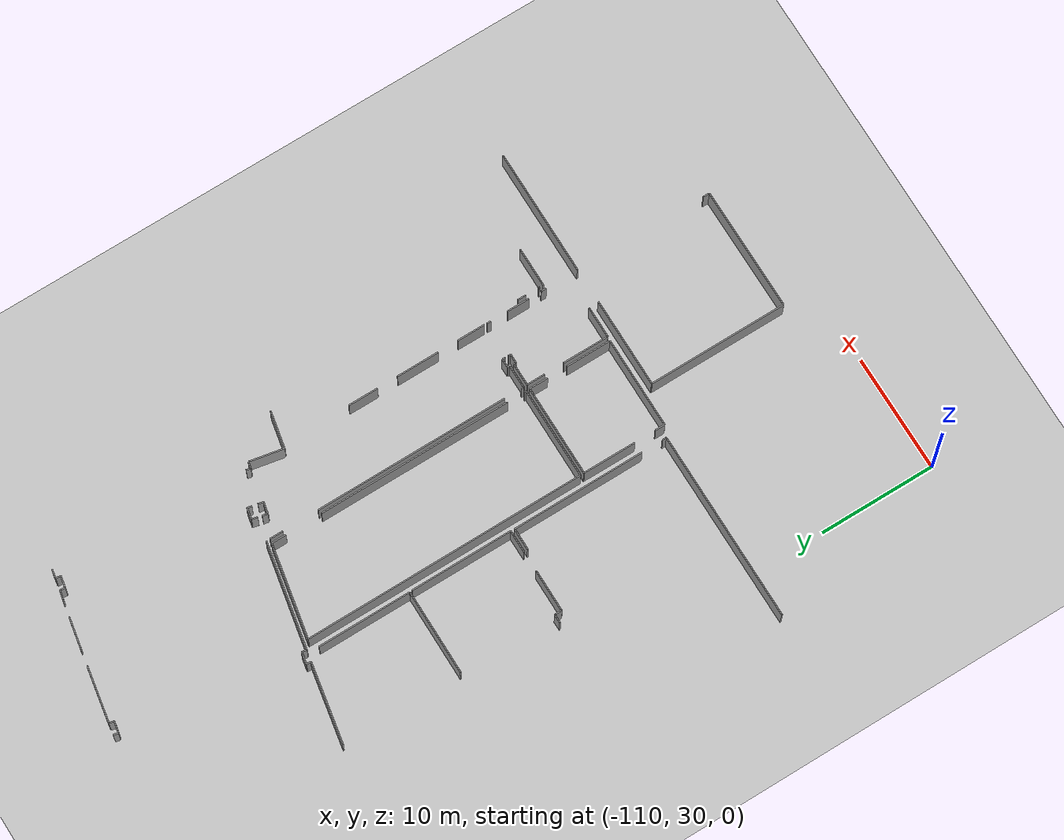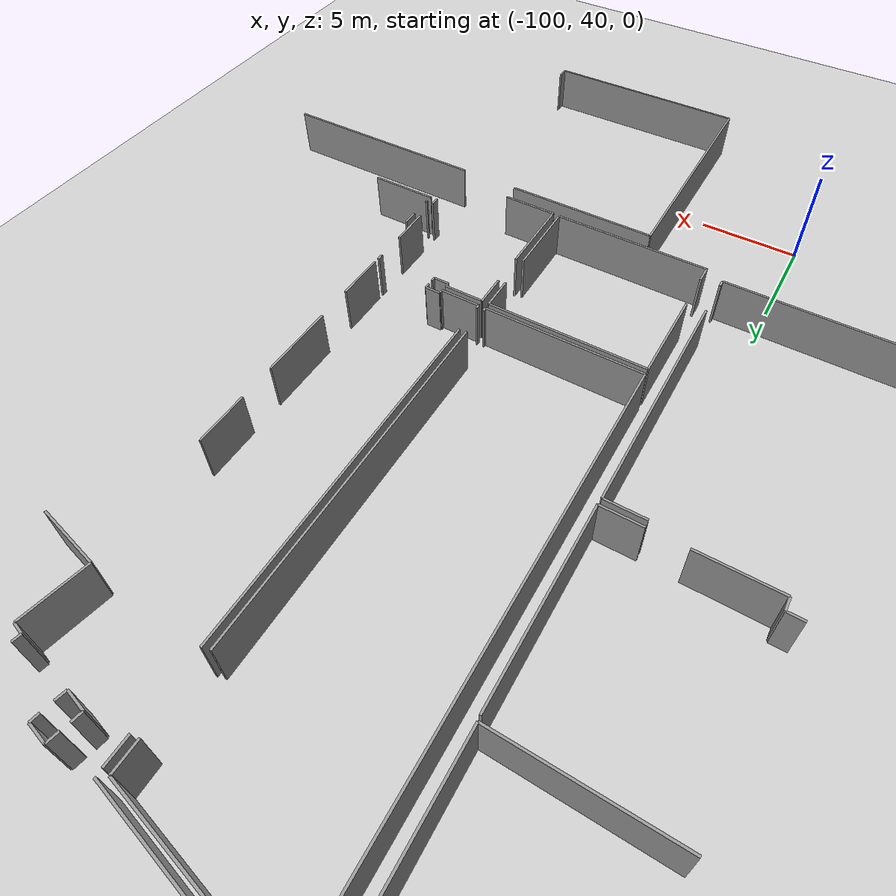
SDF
<sdf version="1.6">
 <world name="default">
  <model name="ground_plane">
   <static>1</static>
   <link name="link">
    <collision name="collision">
     <geometry><plane><normal>0 0 1</normal><size>100 100</size></plane></geometry>
     <surface><friction><ode><mu>100</mu><mu2>50</mu2></ode></friction></surface>
    </collision>
    <visual name="visual">
     <cast_shadows>0</cast_shadows>
     <geometry><plane><normal>0 0 1</normal><size>100 100</size></plane></geometry>
     <material>
      <script><uri>file://media/materials/scripts/gazebo.material</uri><name>Gazebo/Grey</name></script>
     </material>
    </visual>
   </link>
  </model>
  <model name="0510045925_40">
   <static>1</static>
   <link name="Wall_367">
    <collision name="Wall_367_Collision">
     <geometry><box><size>0.418338643665 0.1 2.5</size></box></geometry>
     <pose>0.209169321833 0 1.25 0 0 0</pose>
    </collision>
    <visual name="Wall_367_Visual">
     <pose>0.209169321833 0 1.25 0 0 0</pose>
     <geometry><box><size>0.418338643665 0.1 2.5</size></box></geometry>
     <material>
      <script><uri>file://media/materials/scripts/gazebo.material</uri><name>Gazebo/Grey</name></script>
      <ambient>1 1 1 1</ambient>
     </material>
    </visual>
    <pose>38.5262302987 -6.83985178041 0 0 0 -1.78104220259</pose>
   </link>
   <link name="Wall_368">
    <collision name="Wall_368_Collision">
     <geometry><box><size>0.962103823468 0.1 2.5</size></box></geometry>
     <pose>0.481051911734 0 1.25 0 0 0</pose>
    </collision>
    <visual name="Wall_368_Visual">
     <pose>0.481051911734 0 1.25 0 0 0</pose>
     <geometry><box><size>0.962103823468 0.1 2.5</size></box></geometry>
     <material>
      <script><uri>file://media/materials/scripts/gazebo.material</uri><name>Gazebo/Grey</name></script>
      <ambient>1 1 1 1</ambient>
     </material>
    </visual>
    <pose>38.43892287 -7.24897845232 0 0 0 -0.222903662613</pose>
   </link>
   <link name="Wall_369">
    <collision name="Wall_369_Collision">
     <geometry><box><size>0.439146736867 0.1 2.5</size></box></geometry>
     <pose>0.219573368434 0 1.25 0 0 0</pose>
    </collision>
    <visual name="Wall_369_Visual">
     <pose>0.219573368434 0 1.25 0 0 0</pose>
     <geometry><box><size>0.439146736867 0.1 2.5</size></box></geometry>
     <material>
      <script><uri>file://media/materials/scripts/gazebo.material</uri><name>Gazebo/Grey</name></script>
      <ambient>1 1 1 1</ambient>
     </material>
    </visual>
    <pose>39.3772239283 -7.46166340956 0 0 0 1.31965009399</pose>
   </link>
   <link name="Wall_370">
    <collision name="Wall_370_Collision">
     <geometry><box><size>4.72189360675 0.1 2.5</size></box></geometry>
     <pose>2.36094680338 0 1.25 0 0 0</pose>
    </collision>
    <visual name="Wall_370_Visual">
     <pose>2.36094680338 0 1.25 0 0 0</pose>
     <geometry><box><size>4.72189360675 0.1 2.5</size></box></geometry>
     <material>
      <script><uri>file://media/materials/scripts/gazebo.material</uri><name>Gazebo/Grey</name></script>
      <ambient>1 1 1 1</ambient>
     </material>
    </visual>
    <pose>39.4863582143 -7.03629349509 0 0 0 -0.184492778064</pose>
   </link>
   <link name="Wall_371">
    <collision name="Wall_371_Collision">
     <geometry><box><size>2.55303206979 0.1 2.5</size></box></geometry>
     <pose>1.2765160349 0 1.25 0 0 0</pose>
    </collision>
    <visual name="Wall_371_Visual">
     <pose>1.2765160349 0 1.25 0 0 0</pose>
     <geometry><box><size>2.55303206979 0.1 2.5</size></box></geometry>
     <material>
      <script><uri>file://media/materials/scripts/gazebo.material</uri><name>Gazebo/Grey</name></script>
      <ambient>1 1 1 1</ambient>
     </material>
    </visual>
    <pose>45.6027004391 -8.18372630136 0 0 0 -0.195796871358</pose>
   </link>
   <link name="Wall_372">
    <collision name="Wall_372_Collision">
     <geometry><box><size>0.758009795037 0.1 2.5</size></box></geometry>
     <pose>0.379004897519 0 1.25 0 0 0</pose>
    </collision>
    <visual name="Wall_372_Visual">
     <pose>0.379004897519 0 1.25 0 0 0</pose>
     <geometry><box><size>0.758009795037 0.1 2.5</size></box></geometry>
     <material>
      <script><uri>file://media/materials/scripts/gazebo.material</uri><name>Gazebo/Grey</name></script>
      <ambient>1 1 1 1</ambient>
     </material>
    </visual>
    <pose>49.52290551 -8.96593995076 0 0 0 -0.213221387632</pose>
   </link>
   <link name="Wall_373">
    <collision name="Wall_373_Collision">
     <geometry><box><size>0.433786025775 0.1 2.5</size></box></geometry>
     <pose>0.216893012888 0 1.25 0 0 0</pose>
    </collision>
    <visual name="Wall_373_Visual">
     <pose>0.216893012888 0 1.25 0 0 0</pose>
     <geometry><box><size>0.433786025775 0.1 2.5</size></box></geometry>
     <material>
      <script><uri>file://media/materials/scripts/gazebo.material</uri><name>Gazebo/Grey</name></script>
      <ambient>1 1 1 1</ambient>
     </material>
    </visual>
    <pose>50.263749651 -9.12634197102 0 0 0 -1.6851364156</pose>
   </link>
   <link name="Wall_374">
    <collision name="Wall_374_Collision">
     <geometry><box><size>0.991232753072 0.1 2.5</size></box></geometry>
     <pose>0.495616376536 0 1.25 0 0 0</pose>
    </collision>
    <visual name="Wall_374_Visual">
     <pose>0.495616376536 0 1.25 0 0 0</pose>
     <geometry><box><size>0.991232753072 0.1 2.5</size></box></geometry>
     <material>
      <script><uri>file://media/materials/scripts/gazebo.material</uri><name>Gazebo/Grey</name></script>
      <ambient>1 1 1 1</ambient>
     </material>
    </visual>
    <pose>50.2142585214 -9.55729550011 0 0 0 -0.209698459398</pose>
   </link>
   <link name="Wall_375">
    <collision name="Wall_375_Collision">
     <geometry><box><size>0.439227184396 0.1 2.5</size></box></geometry>
     <pose>0.219613592198 0 1.25 0 0 0</pose>
    </collision>
    <visual name="Wall_375_Visual">
     <pose>0.219613592198 0 1.25 0 0 0</pose>
     <geometry><box><size>0.439227184396 0.1 2.5</size></box></geometry>
     <material>
      <script><uri>file://media/materials/scripts/gazebo.material</uri><name>Gazebo/Grey</name></script>
      <ambient>1 1 1 1</ambient>
     </material>
    </visual>
    <pose>51.1837770615 -9.76363544072 0 0 0 1.47704986818</pose>
   </link>
   <link name="Wall_376">
    <collision name="Wall_376_Collision">
     <geometry><box><size>0.774790954227 0.1 2.5</size></box></geometry>
     <pose>0.387395477113 0 1.25 0 0 0</pose>
    </collision>
    <visual name="Wall_376_Visual">
     <pose>0.387395477113 0 1.25 0 0 0</pose>
     <geometry><box><size>0.774790954227 0.1 2.5</size></box></geometry>
     <material>
      <script><uri>file://media/materials/scripts/gazebo.material</uri><name>Gazebo/Grey</name></script>
      <ambient>1 1 1 1</ambient>
     </material>
    </visual>
    <pose>51.2248927692 -9.326336895 0 0 0 -0.169510758639</pose>
   </link>
   <link name="Wall_496">
    <collision name="Wall_496_Collision">
     <geometry><box><size>0.381421194703 0.1 2.5</size></box></geometry>
     <pose>0.190710597351 0 1.25 0 0 0</pose>
    </collision>
    <visual name="Wall_496_Visual">
     <pose>0.190710597351 0 1.25 0 0 0</pose>
     <geometry><box><size>0.381421194703 0.1 2.5</size></box></geometry>
     <material>
      <script><uri>file://media/materials/scripts/gazebo.material</uri><name>Gazebo/Grey</name></script>
      <ambient>1 1 1 1</ambient>
     </material>
    </visual>
    <pose>48.2201466968 -24.8789878429 0 0 0 1.39623976592</pose>
   </link>
   <link name="Wall_497">
    <collision name="Wall_497_Collision">
     <geometry><box><size>0.952383807945 0.1 2.5</size></box></geometry>
     <pose>0.476191903973 0 1.25 0 0 0</pose>
    </collision>
    <visual name="Wall_497_Visual">
     <pose>0.476191903973 0 1.25 0 0 0</pose>
     <geometry><box><size>0.952383807945 0.1 2.5</size></box></geometry>
     <material>
      <script><uri>file://media/materials/scripts/gazebo.material</uri><name>Gazebo/Grey</name></script>
      <ambient>1 1 1 1</ambient>
     </material>
    </visual>
    <pose>48.2863886703 -24.5033628588 0 0 0 2.94336088614</pose>
   </link>
   <link name="Wall_498">
    <collision name="Wall_498_Collision">
     <geometry><box><size>0.509800697012 0.1 2.5</size></box></geometry>
     <pose>0.254900348506 0 1.25 0 0 0</pose>
    </collision>
    <visual name="Wall_498_Visual">
     <pose>0.254900348506 0 1.25 0 0 0</pose>
     <geometry><box><size>0.509800697012 0.1 2.5</size></box></geometry>
     <material>
      <script><uri>file://media/materials/scripts/gazebo.material</uri><name>Gazebo/Grey</name></script>
      <ambient>1 1 1 1</ambient>
     </material>
    </visual>
    <pose>47.352656024 -24.3158041674 0 0 0 -1.77483111735</pose>
   </link>
   <link name="Wall_499">
    <collision name="Wall_499_Collision">
     <geometry><box><size>9.03785184257 0.1 2.5</size></box></geometry>
     <pose>4.51892592128 0 1.25 0 0 0</pose>
    </collision>
    <visual name="Wall_499_Visual">
     <pose>4.51892592128 0 1.25 0 0 0</pose>
     <geometry><box><size>9.03785184257 0.1 2.5</size></box></geometry>
     <material>
      <script><uri>file://media/materials/scripts/gazebo.material</uri><name>Gazebo/Grey</name></script>
      <ambient>1 1 1 1</ambient>
     </material>
    </visual>
    <pose>45.3072764651 -24.4112332174 0 0 0 2.94241271884</pose>
   </link>
   <link name="Wall_500">
    <collision name="Wall_500_Collision">
     <geometry><box><size>0.406377030415 0.1 2.5</size></box></geometry>
     <pose>0.203188515208 0 1.25 0 0 0</pose>
    </collision>
    <visual name="Wall_500_Visual">
     <pose>0.203188515208 0 1.25 0 0 0</pose>
     <geometry><box><size>0.406377030415 0.1 2.5</size></box></geometry>
     <material>
      <script><uri>file://media/materials/scripts/gazebo.material</uri><name>Gazebo/Grey</name></script>
      <ambient>1 1 1 1</ambient>
     </material>
    </visual>
    <pose>36.448110454 -22.6229537321 0 0 0 1.41591528321</pose>
   </link>
   <link name="Wall_501">
    <collision name="Wall_501_Collision">
     <geometry><box><size>1.01903508116 0.1 2.5</size></box></geometry>
     <pose>0.509517540581 0 1.25 0 0 0</pose>
    </collision>
    <visual name="Wall_501_Visual">
     <pose>0.509517540581 0 1.25 0 0 0</pose>
     <geometry><box><size>1.01903508116 0.1 2.5</size></box></geometry>
     <material>
      <script><uri>file://media/materials/scripts/gazebo.material</uri><name>Gazebo/Grey</name></script>
      <ambient>1 1 1 1</ambient>
     </material>
    </visual>
    <pose>36.5107992183 -22.2214410802 0 0 0 2.9415106351</pose>
   </link>
   <link name="Wall_502">
    <collision name="Wall_502_Collision">
     <geometry><box><size>0.398989256344 0.1 2.5</size></box></geometry>
     <pose>0.199494628172 0 1.25 0 0 0</pose>
    </collision>
    <visual name="Wall_502_Visual">
     <pose>0.199494628172 0 1.25 0 0 0</pose>
     <geometry><box><size>0.398989256344 0.1 2.5</size></box></geometry>
     <material>
      <script><uri>file://media/materials/scripts/gazebo.material</uri><name>Gazebo/Grey</name></script>
      <ambient>1 1 1 1</ambient>
     </material>
    </visual>
    <pose>35.5120936017 -22.0189081495 0 0 0 -1.6331754574</pose>
   </link>
   <link name="Wall_503">
    <collision name="Wall_503_Collision">
     <geometry><box><size>6.80683243617 0.1 2.5</size></box></geometry>
     <pose>3.40341621808 0 1.25 0 0 0</pose>
    </collision>
    <visual name="Wall_503_Visual">
     <pose>3.40341621808 0 1.25 0 0 0</pose>
     <geometry><box><size>6.80683243617 0.1 2.5</size></box></geometry>
     <material>
      <script><uri>file://media/materials/scripts/gazebo.material</uri><name>Gazebo/Grey</name></script>
      <ambient>1 1 1 1</ambient>
     </material>
    </visual>
    <pose>35.4872211365 -22.4171213929 0 0 0 2.95478567318</pose>
   </link>
   <link name="Wall_642">
    <collision name="Wall_642_Collision">
     <geometry><box><size>8.05284421408 0.1 2.5</size></box></geometry>
     <pose>4.02642210704 0 1.25 0 0 0</pose>
    </collision>
    <visual name="Wall_642_Visual">
     <pose>4.02642210704 0 1.25 0 0 0</pose>
     <geometry><box><size>8.05284421408 0.1 2.5</size></box></geometry>
     <material>
      <script><uri>file://media/materials/scripts/gazebo.material</uri><name>Gazebo/Grey</name></script>
      <ambient>1 1 1 1</ambient>
     </material>
    </visual>
    <pose>36.1661379153 -23.5239460927 0 0 0 -1.57164728313</pose>
   </link>
   <link name="Wall_643">
    <collision name="Wall_643_Collision">
     <geometry><box><size>7.32595619401 0.1 2.5</size></box></geometry>
     <pose>3.662978097 0 1.25 0 0 0</pose>
    </collision>
    <visual name="Wall_643_Visual">
     <pose>3.662978097 0 1.25 0 0 0</pose>
     <geometry><box><size>7.32595619401 0.1 2.5</size></box></geometry>
     <material>
      <script><uri>file://media/materials/scripts/gazebo.material</uri><name>Gazebo/Grey</name></script>
      <ambient>1 1 1 1</ambient>
     </material>
    </visual>
    <pose>36.1592852973 -31.5767873912 0 0 0 3.14159265359</pose>
   </link>
   <link name="Wall_655">
    <collision name="Wall_655_Collision">
     <geometry><box><size>8.80739067536 0.1 2.5</size></box></geometry>
     <pose>4.40369533768 0 1.25 0 0 0</pose>
    </collision>
    <visual name="Wall_655_Visual">
     <pose>4.40369533768 0 1.25 0 0 0</pose>
     <geometry><box><size>8.80739067536 0.1 2.5</size></box></geometry>
     <material>
      <script><uri>file://media/materials/scripts/gazebo.material</uri><name>Gazebo/Grey</name></script>
      <ambient>1 1 1 1</ambient>
     </material>
    </visual>
    <pose>36.1854267658 -31.7823659298 0 0 0 -1.57079632679</pose>
   </link>
   <link name="Wall_656">
    <collision name="Wall_656_Collision">
     <geometry><box><size>1.93294586432 0.1 2.5</size></box></geometry>
     <pose>0.966472932159 0 1.25 0 0 0</pose>
    </collision>
    <visual name="Wall_656_Visual">
     <pose>0.966472932159 0 1.25 0 0 0</pose>
     <geometry><box><size>1.93294586432 0.1 2.5</size></box></geometry>
     <material>
      <script><uri>file://media/materials/scripts/gazebo.material</uri><name>Gazebo/Grey</name></script>
      <ambient>1 1 1 1</ambient>
     </material>
    </visual>
    <pose>36.1854267658 -40.5897566052 0 0 0 3.14159265359</pose>
   </link>
   <link name="Wall_657">
    <collision name="Wall_657_Collision">
     <geometry><box><size>3.6387401335 0.1 2.5</size></box></geometry>
     <pose>1.81937006675 0 1.25 0 0 0</pose>
    </collision>
    <visual name="Wall_657_Visual">
     <pose>1.81937006675 0 1.25 0 0 0</pose>
     <geometry><box><size>3.6387401335 0.1 2.5</size></box></geometry>
     <material>
      <script><uri>file://media/materials/scripts/gazebo.material</uri><name>Gazebo/Grey</name></script>
      <ambient>1 1 1 1</ambient>
     </material>
    </visual>
    <pose>32.5207989645 -40.5897566052 0 0 0 3.14159265359</pose>
   </link>
   <link name="Wall_658">
    <collision name="Wall_658_Collision">
     <geometry><box><size>0.607852592574 0.1 2.5</size></box></geometry>
     <pose>0.303926296287 0 1.25 0 0 0</pose>
    </collision>
    <visual name="Wall_658_Visual">
     <pose>0.303926296287 0 1.25 0 0 0</pose>
     <geometry><box><size>0.607852592574 0.1 2.5</size></box></geometry>
     <material>
      <script><uri>file://media/materials/scripts/gazebo.material</uri><name>Gazebo/Grey</name></script>
      <ambient>1 1 1 1</ambient>
     </material>
    </visual>
    <pose>28.882058831 -40.5897566052 0 0 0 1.57079632679</pose>
   </link>
   <link name="Wall_659">
    <collision name="Wall_659_Collision">
     <geometry><box><size>0.746427755641 0.1 2.5</size></box></geometry>
     <pose>0.37321387782 0 1.25 0 0 0</pose>
    </collision>
    <visual name="Wall_659_Visual">
     <pose>0.37321387782 0 1.25 0 0 0</pose>
     <geometry><box><size>0.746427755641 0.1 2.5</size></box></geometry>
     <material>
      <script><uri>file://media/materials/scripts/gazebo.material</uri><name>Gazebo/Grey</name></script>
      <ambient>1 1 1 1</ambient>
     </material>
    </visual>
    <pose>28.882058831 -39.9819040126 0 0 0 3.14159265359</pose>
   </link>
   <link name="Wall_678">
    <collision name="Wall_678_Collision">
     <geometry><box><size>1.88802314662 0.1 2.5</size></box></geometry>
     <pose>0.94401157331 0 1.25 0 0 0</pose>
    </collision>
    <visual name="Wall_678_Visual">
     <pose>0.94401157331 0 1.25 0 0 0</pose>
     <geometry><box><size>1.88802314662 0.1 2.5</size></box></geometry>
     <material>
      <script><uri>file://media/materials/scripts/gazebo.material</uri><name>Gazebo/Grey</name></script>
      <ambient>1 1 1 1</ambient>
     </material>
    </visual>
    <pose>34.2712621507 -40.9255348849 0 0 0 0.0</pose>
   </link>
   <link name="Wall_679">
    <collision name="Wall_679_Collision">
     <geometry><box><size>11.4215375244 0.1 2.5</size></box></geometry>
     <pose>5.71076876221 0 1.25 0 0 0</pose>
    </collision>
    <visual name="Wall_679_Visual">
     <pose>5.71076876221 0 1.25 0 0 0</pose>
     <geometry><box><size>11.4215375244 0.1 2.5</size></box></geometry>
     <material>
      <script><uri>file://media/materials/scripts/gazebo.material</uri><name>Gazebo/Grey</name></script>
      <ambient>1 1 1 1</ambient>
     </material>
    </visual>
    <pose>36.1592852973 -40.9255348849 0 0 0 -1.57079632679</pose>
   </link>
   <link name="Wall_680">
    <collision name="Wall_680_Collision">
     <geometry><box><size>0.355828532271 0.1 2.5</size></box></geometry>
     <pose>0.177914266135 0 1.25 0 0 0</pose>
    </collision>
    <visual name="Wall_680_Visual">
     <pose>0.177914266135 0 1.25 0 0 0</pose>
     <geometry><box><size>0.355828532271 0.1 2.5</size></box></geometry>
     <material>
      <script><uri>file://media/materials/scripts/gazebo.material</uri><name>Gazebo/Grey</name></script>
      <ambient>1 1 1 1</ambient>
     </material>
    </visual>
    <pose>36.1592852973 -54.2059084795 0 0 0 -1.57079632679</pose>
   </link>
   <link name="Wall_681">
    <collision name="Wall_681_Collision">
     <geometry><box><size>16.3597506249 0.1 2.5</size></box></geometry>
     <pose>8.17987531243 0 1.25 0 0 0</pose>
    </collision>
    <visual name="Wall_681_Visual">
     <pose>8.17987531243 0 1.25 0 0 0</pose>
     <geometry><box><size>16.3597506249 0.1 2.5</size></box></geometry>
     <material>
      <script><uri>file://media/materials/scripts/gazebo.material</uri><name>Gazebo/Grey</name></script>
      <ambient>1 1 1 1</ambient>
     </material>
    </visual>
    <pose>36.1592852973 -54.5617370118 0 0 0 -3.1403050141</pose>
   </link>
   <link name="Wall_682">
    <collision name="Wall_682_Collision">
     <geometry><box><size>7.84421715185 0.1 2.5</size></box></geometry>
     <pose>3.92210857592 0 1.25 0 0 0</pose>
    </collision>
    <visual name="Wall_682_Visual">
     <pose>3.92210857592 0 1.25 0 0 0</pose>
     <geometry><box><size>7.84421715185 0.1 2.5</size></box></geometry>
     <material>
      <script><uri>file://media/materials/scripts/gazebo.material</uri><name>Gazebo/Grey</name></script>
      <ambient>1 1 1 1</ambient>
     </material>
    </visual>
    <pose>37.1077383823 -47.738559935 0 0 0 0.0</pose>
   </link>
   <link name="Wall_683">
    <collision name="Wall_683_Collision">
     <geometry><box><size>1.61391842847 0.1 2.5</size></box></geometry>
     <pose>0.806959214233 0 1.25 0 0 0</pose>
    </collision>
    <visual name="Wall_683_Visual">
     <pose>0.806959214233 0 1.25 0 0 0</pose>
     <geometry><box><size>1.61391842847 0.1 2.5</size></box></geometry>
     <material>
      <script><uri>file://media/materials/scripts/gazebo.material</uri><name>Gazebo/Grey</name></script>
      <ambient>1 1 1 1</ambient>
     </material>
    </visual>
    <pose>44.9519555341 -47.738559935 0 0 0 -1.57079632679</pose>
   </link>
   <link name="Wall_684">
    <collision name="Wall_684_Collision">
     <geometry><box><size>3.89533260577 0.1 2.5</size></box></geometry>
     <pose>1.94766630289 0 1.25 0 0 0</pose>
    </collision>
    <visual name="Wall_684_Visual">
     <pose>1.94766630289 0 1.25 0 0 0</pose>
     <geometry><box><size>3.89533260577 0.1 2.5</size></box></geometry>
     <material>
      <script><uri>file://media/materials/scripts/gazebo.material</uri><name>Gazebo/Grey</name></script>
      <ambient>1 1 1 1</ambient>
     </material>
    </visual>
    <pose>44.9519555341 -51.0986269384 0 0 0 -1.57079632679</pose>
   </link>
   <link name="Wall_685">
    <collision name="Wall_685_Collision">
     <geometry><box><size>7.85995279308 0.1 2.5</size></box></geometry>
     <pose>3.92997639654 0 1.25 0 0 0</pose>
    </collision>
    <visual name="Wall_685_Visual">
     <pose>3.92997639654 0 1.25 0 0 0</pose>
     <geometry><box><size>7.85995279308 0.1 2.5</size></box></geometry>
     <material>
      <script><uri>file://media/materials/scripts/gazebo.material</uri><name>Gazebo/Grey</name></script>
      <ambient>1 1 1 1</ambient>
     </material>
    </visual>
    <pose>44.9519555341 -54.9939595442 0 0 0 3.14159265359</pose>
   </link>
   <link name="Wall_686">
    <collision name="Wall_686_Collision">
     <geometry><box><size>0.840334001675 0.1 2.5</size></box></geometry>
     <pose>0.420167000838 0 1.25 0 0 0</pose>
    </collision>
    <visual name="Wall_686_Visual">
     <pose>0.420167000838 0 1.25 0 0 0</pose>
     <geometry><box><size>0.840334001675 0.1 2.5</size></box></geometry>
     <material>
      <script><uri>file://media/materials/scripts/gazebo.material</uri><name>Gazebo/Grey</name></script>
      <ambient>1 1 1 1</ambient>
     </material>
    </visual>
    <pose>37.092002741 -54.9939595442 0 0 0 1.57079632679</pose>
   </link>
   <link name="Wall_687">
    <collision name="Wall_687_Collision">
     <geometry><box><size>4.54585094491 0.1 2.5</size></box></geometry>
     <pose>2.27292547245 0 1.25 0 0 0</pose>
    </collision>
    <visual name="Wall_687_Visual">
     <pose>2.27292547245 0 1.25 0 0 0</pose>
     <geometry><box><size>4.54585094491 0.1 2.5</size></box></geometry>
     <material>
      <script><uri>file://media/materials/scripts/gazebo.material</uri><name>Gazebo/Grey</name></script>
      <ambient>1 1 1 1</ambient>
     </material>
    </visual>
    <pose>37.092002741 -52.2843836451 0 0 0 1.56733478069</pose>
   </link>
   <link name="Wall_691">
    <collision name="Wall_691_Collision">
     <geometry><box><size>0.0890840334002 0.1 2.5</size></box></geometry>
     <pose>0.0445420167001 0 1.25 0 0 0</pose>
    </collision>
    <visual name="Wall_691_Visual">
     <pose>0.0445420167001 0 1.25 0 0 0</pose>
     <geometry><box><size>0.0890840334002 0.1 2.5</size></box></geometry>
     <material>
      <script><uri>file://media/materials/scripts/gazebo.material</uri><name>Gazebo/Grey</name></script>
      <ambient>1 1 1 1</ambient>
     </material>
    </visual>
    <pose>51.4413847364 -52.6739676658 0 0 0 1.57079632679</pose>
   </link>
   <link name="Wall_692">
    <collision name="Wall_692_Collision">
     <geometry><box><size>0.739609278924 0.1 2.5</size></box></geometry>
     <pose>0.369804639462 0 1.25 0 0 0</pose>
    </collision>
    <visual name="Wall_692_Visual">
     <pose>0.369804639462 0 1.25 0 0 0</pose>
     <geometry><box><size>0.739609278924 0.1 2.5</size></box></geometry>
     <material>
      <script><uri>file://media/materials/scripts/gazebo.material</uri><name>Gazebo/Grey</name></script>
      <ambient>1 1 1 1</ambient>
     </material>
    </visual>
    <pose>51.4413847364 -51.4448110454 0 0 0 1.56118783733</pose>
   </link>
   <link name="Wall_696">
    <collision name="Wall_696_Collision">
     <geometry><box><size>3.38443186721 0.1 2.5</size></box></geometry>
     <pose>1.69221593361 0 1.25 0 0 0</pose>
    </collision>
    <visual name="Wall_696_Visual">
     <pose>1.69221593361 0 1.25 0 0 0</pose>
     <geometry><box><size>3.38443186721 0.1 2.5</size></box></geometry>
     <material>
      <script><uri>file://media/materials/scripts/gazebo.material</uri><name>Gazebo/Grey</name></script>
      <ambient>1 1 1 1</ambient>
     </material>
    </visual>
    <pose>51.40839065 -53.0117763509 0 0 0 0.0</pose>
   </link>
   <link name="Wall_731">
    <collision name="Wall_731_Collision">
     <geometry><box><size>3.97071140326 0.1 2.5</size></box></geometry>
     <pose>1.98535570163 0 1.25 0 0 0</pose>
    </collision>
    <visual name="Wall_731_Visual">
     <pose>1.98535570163 0 1.25 0 0 0</pose>
     <geometry><box><size>3.97071140326 0.1 2.5</size></box></geometry>
     <material>
      <script><uri>file://media/materials/scripts/gazebo.material</uri><name>Gazebo/Grey</name></script>
      <ambient>1 1 1 1</ambient>
     </material>
    </visual>
    <pose>45.3146366843 -54.9947209462 0 0 0 1.57079632679</pose>
   </link>
   <link name="Wall_732">
    <collision name="Wall_732_Collision">
     <geometry><box><size>1.56265069414 0.1 2.5</size></box></geometry>
     <pose>0.781325347072 0 1.25 0 0 0</pose>
    </collision>
    <visual name="Wall_732_Visual">
     <pose>0.781325347072 0 1.25 0 0 0</pose>
     <geometry><box><size>1.56265069414 0.1 2.5</size></box></geometry>
     <material>
      <script><uri>file://media/materials/scripts/gazebo.material</uri><name>Gazebo/Grey</name></script>
      <ambient>1 1 1 1</ambient>
     </material>
    </visual>
    <pose>45.3146366843 -49.3062866425 0 0 0 1.57079632679</pose>
   </link>
   <link name="Wall_733">
    <collision name="Wall_733_Collision">
     <geometry><box><size>1.94741250222 0.1 2.5</size></box></geometry>
     <pose>0.97370625111 0 1.25 0 0 0</pose>
    </collision>
    <visual name="Wall_733_Visual">
     <pose>0.97370625111 0 1.25 0 0 0</pose>
     <geometry><box><size>1.94741250222 0.1 2.5</size></box></geometry>
     <material>
      <script><uri>file://media/materials/scripts/gazebo.material</uri><name>Gazebo/Grey</name></script>
      <ambient>1 1 1 1</ambient>
     </material>
    </visual>
    <pose>45.3146366843 -47.7436359483 0 0 0 0.0</pose>
   </link>
   <link name="Wall_734">
    <collision name="Wall_734_Collision">
     <geometry><box><size>0.199741123322 0.1 2.5</size></box></geometry>
     <pose>0.0998705616609 0 1.25 0 0 0</pose>
    </collision>
    <visual name="Wall_734_Visual">
     <pose>0.0998705616609 0 1.25 0 0 0</pose>
     <geometry><box><size>0.199741123322 0.1 2.5</size></box></geometry>
     <material>
      <script><uri>file://media/materials/scripts/gazebo.material</uri><name>Gazebo/Grey</name></script>
      <ambient>1 1 1 1</ambient>
     </material>
    </visual>
    <pose>47.2620491866 -47.7436359483 0 0 0 -1.57079632679</pose>
   </link>
   <link name="Wall_735">
    <collision name="Wall_735_Collision">
     <geometry><box><size>0.776122433441 0.1 2.5</size></box></geometry>
     <pose>0.38806121672 0 1.25 0 0 0</pose>
    </collision>
    <visual name="Wall_735_Visual">
     <pose>0.38806121672 0 1.25 0 0 0</pose>
     <geometry><box><size>0.776122433441 0.1 2.5</size></box></geometry>
     <material>
      <script><uri>file://media/materials/scripts/gazebo.material</uri><name>Gazebo/Grey</name></script>
      <ambient>1 1 1 1</ambient>
     </material>
    </visual>
    <pose>47.2620491866 -47.9433770716 0 0 0 0.0</pose>
   </link>
   <link name="Wall_736">
    <collision name="Wall_736_Collision">
     <geometry><box><size>0.221567980508 0.1 2.5</size></box></geometry>
     <pose>0.110783990254 0 1.25 0 0 0</pose>
    </collision>
    <visual name="Wall_736_Visual">
     <pose>0.110783990254 0 1.25 0 0 0</pose>
     <geometry><box><size>0.221567980508 0.1 2.5</size></box></geometry>
     <material>
      <script><uri>file://media/materials/scripts/gazebo.material</uri><name>Gazebo/Grey</name></script>
      <ambient>1 1 1 1</ambient>
     </material>
    </visual>
    <pose>48.03817162 -47.9433770716 0 0 0 1.57079632679</pose>
   </link>
   <link name="Wall_737">
    <collision name="Wall_737_Collision">
     <geometry><box><size>0.308367807924 0.1 2.5</size></box></geometry>
     <pose>0.154183903962 0 1.25 0 0 0</pose>
    </collision>
    <visual name="Wall_737_Visual">
     <pose>0.154183903962 0 1.25 0 0 0</pose>
     <geometry><box><size>0.308367807924 0.1 2.5</size></box></geometry>
     <material>
      <script><uri>file://media/materials/scripts/gazebo.material</uri><name>Gazebo/Grey</name></script>
      <ambient>1 1 1 1</ambient>
     </material>
    </visual>
    <pose>51.0850486028 -47.7218090911 0 0 0 -1.57079632679</pose>
   </link>
   <link name="Wall_738">
    <collision name="Wall_738_Collision">
     <geometry><box><size>1.95071191087 0.1 2.5</size></box></geometry>
     <pose>0.975355955433 0 1.25 0 0 0</pose>
    </collision>
    <visual name="Wall_738_Visual">
     <pose>0.975355955433 0 1.25 0 0 0</pose>
     <geometry><box><size>1.95071191087 0.1 2.5</size></box></geometry>
     <material>
      <script><uri>file://media/materials/scripts/gazebo.material</uri><name>Gazebo/Grey</name></script>
      <ambient>1 1 1 1</ambient>
     </material>
    </visual>
    <pose>51.0850486028 -49.5326768356 0 0 0 -1.57079632679</pose>
   </link>
   <link name="Wall_739">
    <collision name="Wall_739_Collision">
     <geometry><box><size>0.44897337631 0.1 2.5</size></box></geometry>
     <pose>0.224486688155 0 1.25 0 0 0</pose>
    </collision>
    <visual name="Wall_739_Visual">
     <pose>0.224486688155 0 1.25 0 0 0</pose>
     <geometry><box><size>0.44897337631 0.1 2.5</size></box></geometry>
     <material>
      <script><uri>file://media/materials/scripts/gazebo.material</uri><name>Gazebo/Grey</name></script>
      <ambient>1 1 1 1</ambient>
     </material>
    </visual>
    <pose>51.0850486028 -52.5968122636 0 0 0 -1.57079632679</pose>
   </link>
   <link name="Wall_740">
    <collision name="Wall_740_Collision">
     <geometry><box><size>2.70094667648 0.1 2.5</size></box></geometry>
     <pose>1.35047333824 0 1.25 0 0 0</pose>
    </collision>
    <visual name="Wall_740_Visual">
     <pose>1.35047333824 0 1.25 0 0 0</pose>
     <geometry><box><size>2.70094667648 0.1 2.5</size></box></geometry>
     <material>
      <script><uri>file://media/materials/scripts/gazebo.material</uri><name>Gazebo/Grey</name></script>
      <ambient>1 1 1 1</ambient>
     </material>
    </visual>
    <pose>48.0117763509 -55.0343138499 0 0 0 3.14159265359</pose>
   </link>
   <link name="Wall_741">
    <collision name="Wall_741_Collision">
     <geometry><box><size>0.0397755119513 0.1 2.5</size></box></geometry>
     <pose>0.0198877559756 0 1.25 0 0 0</pose>
    </collision>
    <visual name="Wall_741_Visual">
     <pose>0.0198877559756 0 1.25 0 0 0</pose>
     <geometry><box><size>0.0397755119513 0.1 2.5</size></box></geometry>
     <material>
      <script><uri>file://media/materials/scripts/gazebo.material</uri><name>Gazebo/Grey</name></script>
      <ambient>1 1 1 1</ambient>
     </material>
    </visual>
    <pose>45.3108296744 -55.0343138499 0 0 0 1.47493717969</pose>
   </link>
   <link name="Wall_747">
    <collision name="Wall_747_Collision">
     <geometry><box><size>24.2912616431 0.1 2.5</size></box></geometry>
     <pose>12.1456308216 0 1.25 0 0 0</pose>
    </collision>
    <visual name="Wall_747_Visual">
     <pose>12.1456308216 0 1.25 0 0 0</pose>
     <geometry><box><size>24.2912616431 0.1 2.5</size></box></geometry>
     <material>
      <script><uri>file://media/materials/scripts/gazebo.material</uri><name>Gazebo/Grey</name></script>
      <ambient>1 1 1 1</ambient>
     </material>
    </visual>
    <pose>37.101139565 -47.4205477018 0 0 0 1.57079632679</pose>
   </link>
   <link name="Wall_748">
    <collision name="Wall_748_Collision">
     <geometry><box><size>7.99162072185 0.1 2.5</size></box></geometry>
     <pose>3.99581036093 0 1.25 0 0 0</pose>
    </collision>
    <visual name="Wall_748_Visual">
     <pose>3.99581036093 0 1.25 0 0 0</pose>
     <geometry><box><size>7.99162072185 0.1 2.5</size></box></geometry>
     <material>
      <script><uri>file://media/materials/scripts/gazebo.material</uri><name>Gazebo/Grey</name></script>
      <ambient>1 1 1 1</ambient>
     </material>
    </visual>
    <pose>37.101139565 -23.1292860587 0 0 0 -0.194181738981</pose>
   </link>
   <link name="Wall_749">
    <collision name="Wall_749_Collision">
     <geometry><box><size>1.24539986295 0.1 2.5</size></box></geometry>
     <pose>0.622699931474 0 1.25 0 0 0</pose>
    </collision>
    <visual name="Wall_749_Visual">
     <pose>0.622699931474 0 1.25 0 0 0</pose>
     <geometry><box><size>1.24539986295 0.1 2.5</size></box></geometry>
     <material>
      <script><uri>file://media/materials/scripts/gazebo.material</uri><name>Gazebo/Grey</name></script>
      <ambient>1 1 1 1</ambient>
     </material>
    </visual>
    <pose>44.9425649095 -24.671378899 0 0 0 -1.57079632679</pose>
   </link>
   <link name="Wall_750">
    <collision name="Wall_750_Collision">
     <geometry><box><size>16.638156392 0.1 2.5</size></box></geometry>
     <pose>8.31907819598 0 1.25 0 0 0</pose>
    </collision>
    <visual name="Wall_750_Visual">
     <pose>8.31907819598 0 1.25 0 0 0</pose>
     <geometry><box><size>16.638156392 0.1 2.5</size></box></geometry>
     <material>
      <script><uri>file://media/materials/scripts/gazebo.material</uri><name>Gazebo/Grey</name></script>
      <ambient>1 1 1 1</ambient>
     </material>
    </visual>
    <pose>44.9425649095 -29.0849724626 0 0 0 -1.57079632679</pose>
   </link>
   <link name="Wall_751">
    <collision name="Wall_751_Collision">
     <geometry><box><size>0.182990279435 0.1 2.5</size></box></geometry>
     <pose>0.0914951397173 0 1.25 0 0 0</pose>
    </collision>
    <visual name="Wall_751_Visual">
     <pose>0.0914951397173 0 1.25 0 0 0</pose>
     <geometry><box><size>0.182990279435 0.1 2.5</size></box></geometry>
     <material>
      <script><uri>file://media/materials/scripts/gazebo.material</uri><name>Gazebo/Grey</name></script>
      <ambient>1 1 1 1</ambient>
     </material>
    </visual>
    <pose>44.9425649095 -47.2362884191 0 0 0 -1.57079632679</pose>
   </link>
   <link name="Wall_752">
    <collision name="Wall_752_Collision">
     <geometry><box><size>7.84142544722 0.1 2.5</size></box></geometry>
     <pose>3.92071272361 0 1.25 0 0 0</pose>
    </collision>
    <visual name="Wall_752_Visual">
     <pose>3.92071272361 0 1.25 0 0 0</pose>
     <geometry><box><size>7.84142544722 0.1 2.5</size></box></geometry>
     <material>
      <script><uri>file://media/materials/scripts/gazebo.material</uri><name>Gazebo/Grey</name></script>
      <ambient>1 1 1 1</ambient>
     </material>
    </visual>
    <pose>44.9425649095 -47.4192786985 0 0 0 -3.14143082034</pose>
   </link>
   <link name="Wall_753">
    <collision name="Wall_753_Collision">
     <geometry><box><size>0.212177355905 0.1 2.5</size></box></geometry>
     <pose>0.106088677952 0 1.25 0 0 0</pose>
    </collision>
    <visual name="Wall_753_Visual">
     <pose>0.106088677952 0 1.25 0 0 0</pose>
     <geometry><box><size>0.212177355905 0.1 2.5</size></box></geometry>
     <material>
      <script><uri>file://media/materials/scripts/gazebo.material</uri><name>Gazebo/Grey</name></script>
      <ambient>1 1 1 1</ambient>
     </material>
    </visual>
    <pose>45.2950940331 -47.4175020939 0 0 0 1.57079632679</pose>
   </link>
   <link name="Wall_754">
    <collision name="Wall_754_Collision">
     <geometry><box><size>16.683586711 0.1 2.5</size></box></geometry>
     <pose>8.3417933555 0 1.25 0 0 0</pose>
    </collision>
    <visual name="Wall_754_Visual">
     <pose>8.3417933555 0 1.25 0 0 0</pose>
     <geometry><box><size>16.683586711 0.1 2.5</size></box></geometry>
     <material>
      <script><uri>file://media/materials/scripts/gazebo.material</uri><name>Gazebo/Grey</name></script>
      <ambient>1 1 1 1</ambient>
     </material>
    </visual>
    <pose>45.2950940331 -45.6812517449 0 0 0 1.57079632679</pose>
   </link>
   <link name="Wall_755">
    <collision name="Wall_755_Collision">
     <geometry><box><size>1.13677317835 0.1 2.5</size></box></geometry>
     <pose>0.568386589173 0 1.25 0 0 0</pose>
    </collision>
    <visual name="Wall_755_Visual">
     <pose>0.568386589173 0 1.25 0 0 0</pose>
     <geometry><box><size>1.13677317835 0.1 2.5</size></box></geometry>
     <material>
      <script><uri>file://media/materials/scripts/gazebo.material</uri><name>Gazebo/Grey</name></script>
      <ambient>1 1 1 1</ambient>
     </material>
    </visual>
    <pose>45.2950940331 -25.8510443897 0 0 0 1.57079632679</pose>
   </link>
   <link name="Wall_756">
    <collision name="Wall_756_Collision">
     <geometry><box><size>0.457829386743 0.1 2.5</size></box></geometry>
     <pose>0.228914693371 0 1.25 0 0 0</pose>
    </collision>
    <visual name="Wall_756_Visual">
     <pose>0.228914693371 0 1.25 0 0 0</pose>
     <geometry><box><size>0.457829386743 0.1 2.5</size></box></geometry>
     <material>
      <script><uri>file://media/materials/scripts/gazebo.material</uri><name>Gazebo/Grey</name></script>
      <ambient>1 1 1 1</ambient>
     </material>
    </visual>
    <pose>47.1577371133 -25.1551229664 0 0 0 -1.74688149853</pose>
   </link>
   <link name="Wall_757">
    <collision name="Wall_757_Collision">
     <geometry><box><size>0.971429231421 0.1 2.5</size></box></geometry>
     <pose>0.485714615711 0 1.25 0 0 0</pose>
    </collision>
    <visual name="Wall_757_Visual">
     <pose>0.485714615711 0 1.25 0 0 0</pose>
     <geometry><box><size>0.971429231421 0.1 2.5</size></box></geometry>
     <material>
      <script><uri>file://media/materials/scripts/gazebo.material</uri><name>Gazebo/Grey</name></script>
      <ambient>1 1 1 1</ambient>
     </material>
    </visual>
    <pose>47.0775361031 -25.6058729474 0 0 0 -0.216713609441</pose>
   </link>
   <link name="Wall_758">
    <collision name="Wall_758_Collision">
     <geometry><box><size>0.470827117813 0.1 2.5</size></box></geometry>
     <pose>0.235413558906 0 1.25 0 0 0</pose>
    </collision>
    <visual name="Wall_758_Visual">
     <pose>0.235413558906 0 1.25 0 0 0</pose>
     <geometry><box><size>0.470827117813 0.1 2.5</size></box></geometry>
     <material>
      <script><uri>file://media/materials/scripts/gazebo.material</uri><name>Gazebo/Grey</name></script>
      <ambient>1 1 1 1</ambient>
     </material>
    </visual>
    <pose>48.0262429888 -25.8147508946 0 0 0 1.35733109937</pose>
   </link>
   <link name="Wall_759">
    <collision name="Wall_759_Collision">
     <geometry><box><size>0.38000435402 0.1 2.5</size></box></geometry>
     <pose>0.19000217701 0 1.25 0 0 0</pose>
    </collision>
    <visual name="Wall_759_Visual">
     <pose>0.19000217701 0 1.25 0 0 0</pose>
     <geometry><box><size>0.38000435402 0.1 2.5</size></box></geometry>
     <material>
      <script><uri>file://media/materials/scripts/gazebo.material</uri><name>Gazebo/Grey</name></script>
      <ambient>1 1 1 1</ambient>
     </material>
    </visual>
    <pose>50.8825156722 -25.966016091 0 0 0 -1.7882337462</pose>
   </link>
   <link name="Wall_760">
    <collision name="Wall_760_Collision">
     <geometry><box><size>0.562434470964 0.1 2.5</size></box></geometry>
     <pose>0.281217235482 0 1.25 0 0 0</pose>
    </collision>
    <visual name="Wall_760_Visual">
     <pose>0.281217235482 0 1.25 0 0 0</pose>
     <geometry><box><size>0.562434470964 0.1 2.5</size></box></geometry>
     <material>
      <script><uri>file://media/materials/scripts/gazebo.material</uri><name>Gazebo/Grey</name></script>
      <ambient>1 1 1 1</ambient>
     </material>
    </visual>
    <pose>50.8005380574 -26.3370726631 0 0 0 -0.244759772904</pose>
   </link>
   <link name="Wall_761">
    <collision name="Wall_761_Collision">
     <geometry><box><size>2.92824926779 0.1 2.5</size></box></geometry>
     <pose>1.4641246339 0 1.25 0 0 0</pose>
    </collision>
    <visual name="Wall_761_Visual">
     <pose>1.4641246339 0 1.25 0 0 0</pose>
     <geometry><box><size>2.92824926779 0.1 2.5</size></box></geometry>
     <material>
      <script><uri>file://media/materials/scripts/gazebo.material</uri><name>Gazebo/Grey</name></script>
      <ambient>1 1 1 1</ambient>
     </material>
    </visual>
    <pose>51.3462094871 -26.4733636202 0 0 0 -1.76123964522</pose>
   </link>
   <link name="Wall_762">
    <collision name="Wall_762_Collision">
     <geometry><box><size>3.15651706407 0.1 2.5</size></box></geometry>
     <pose>1.57825853203 0 1.25 0 0 0</pose>
    </collision>
    <visual name="Wall_762_Visual">
     <pose>1.57825853203 0 1.25 0 0 0</pose>
     <geometry><box><size>3.15651706407 0.1 2.5</size></box></geometry>
     <material>
      <script><uri>file://media/materials/scripts/gazebo.material</uri><name>Gazebo/Grey</name></script>
      <ambient>1 1 1 1</ambient>
     </material>
    </visual>
    <pose>50.7919088348 -29.3486713535 0 0 0 -0.201243150299</pose>
   </link>
   <link name="Wall_766">
    <collision name="Wall_766_Collision">
     <geometry><box><size>2.56668612472 0.1 2.5</size></box></geometry>
     <pose>1.28334306236 0 1.25 0 0 0</pose>
    </collision>
    <visual name="Wall_766_Visual">
     <pose>1.28334306236 0 1.25 0 0 0</pose>
     <geometry><box><size>2.56668612472 0.1 2.5</size></box></geometry>
     <material>
      <script><uri>file://media/materials/scripts/gazebo.material</uri><name>Gazebo/Grey</name></script>
      <ambient>1 1 1 1</ambient>
     </material>
    </visual>
    <pose>51.1111900713 -35.2860841095 0 0 0 -1.57079632679</pose>
   </link>
   <link name="Wall_767">
    <collision name="Wall_767_Collision">
     <geometry><box><size>3.65879038603 0.1 2.5</size></box></geometry>
     <pose>1.82939519302 0 1.25 0 0 0</pose>
    </collision>
    <visual name="Wall_767_Visual">
     <pose>1.82939519302 0 1.25 0 0 0</pose>
     <geometry><box><size>3.65879038603 0.1 2.5</size></box></geometry>
     <material>
      <script><uri>file://media/materials/scripts/gazebo.material</uri><name>Gazebo/Grey</name></script>
      <ambient>1 1 1 1</ambient>
     </material>
    </visual>
    <pose>51.1111900713 -39.6385117129 0 0 0 -1.57079632679</pose>
   </link>
   <link name="Wall_768">
    <collision name="Wall_768_Collision">
     <geometry><box><size>2.40146189183 0.1 2.5</size></box></geometry>
     <pose>1.20073094592 0 1.25 0 0 0</pose>
    </collision>
    <visual name="Wall_768_Visual">
     <pose>1.20073094592 0 1.25 0 0 0</pose>
     <geometry><box><size>2.40146189183 0.1 2.5</size></box></geometry>
     <material>
      <script><uri>file://media/materials/scripts/gazebo.material</uri><name>Gazebo/Grey</name></script>
      <ambient>1 1 1 1</ambient>
     </material>
    </visual>
    <pose>51.1111900713 -45.063754727 0 0 0 -1.57079632679</pose>
   </link>
   <link name="Wall_769">
    <collision name="Wall_769_Collision">
     <geometry><box><size>0.259891880917 0.1 2.5</size></box></geometry>
     <pose>0.129945940458 0 1.25 0 0 0</pose>
    </collision>
    <visual name="Wall_769_Visual">
     <pose>0.129945940458 0 1.25 0 0 0</pose>
     <geometry><box><size>0.259891880917 0.1 2.5</size></box></geometry>
     <material>
      <script><uri>file://media/materials/scripts/gazebo.material</uri><name>Gazebo/Grey</name></script>
      <ambient>1 1 1 1</ambient>
     </material>
    </visual>
    <pose>48.035887414 -47.4652166189 0 0 0 1.57079632679</pose>
   </link>
   <link name="Wall_770">
    <collision name="Wall_770_Collision">
     <geometry><box><size>0.758863988224 0.1 2.5</size></box></geometry>
     <pose>0.379431994112 0 1.25 0 0 0</pose>
    </collision>
    <visual name="Wall_770_Visual">
     <pose>0.379431994112 0 1.25 0 0 0</pose>
     <geometry><box><size>0.758863988224 0.1 2.5</size></box></geometry>
     <material>
      <script><uri>file://media/materials/scripts/gazebo.material</uri><name>Gazebo/Grey</name></script>
      <ambient>1 1 1 1</ambient>
     </material>
    </visual>
    <pose>48.035887414 -47.205324738 0 0 0 3.14159265359</pose>
   </link>
   <link name="Wall_771">
    <collision name="Wall_771_Collision">
     <geometry><box><size>0.206339940611 0.1 2.5</size></box></geometry>
     <pose>0.103169970305 0 1.25 0 0 0</pose>
    </collision>
    <visual name="Wall_771_Visual">
     <pose>0.103169970305 0 1.25 0 0 0</pose>
     <geometry><box><size>0.206339940611 0.1 2.5</size></box></geometry>
     <material>
      <script><uri>file://media/materials/scripts/gazebo.material</uri><name>Gazebo/Grey</name></script>
      <ambient>1 1 1 1</ambient>
     </material>
    </visual>
    <pose>47.2770234258 -47.205324738 0 0 0 -1.57079632679</pose>
   </link>
   <link name="Wall_772">
    <collision name="Wall_772_Collision">
     <geometry><box><size>1.98193798916 0.1 2.5</size></box></geometry>
     <pose>0.990968994581 0 1.25 0 0 0</pose>
    </collision>
    <visual name="Wall_772_Visual">
     <pose>0.990968994581 0 1.25 0 0 0</pose>
     <geometry><box><size>1.98193798916 0.1 2.5</size></box></geometry>
     <material>
      <script><uri>file://media/materials/scripts/gazebo.material</uri><name>Gazebo/Grey</name></script>
      <ambient>1 1 1 1</ambient>
     </material>
    </visual>
    <pose>47.2770234258 -47.4116646786 0 0 0 -3.1386473426</pose>
   </link>
   <link name="Wall_773">
    <collision name="Wall_773_Collision">
     <geometry><box><size>11.9667013528 0.1 2.5</size></box></geometry>
     <pose>5.98335067638 0 1.25 0 0 0</pose>
    </collision>
    <visual name="Wall_773_Visual">
     <pose>5.98335067638 0 1.25 0 0 0</pose>
     <geometry><box><size>11.9667013528 0.1 2.5</size></box></geometry>
     <material>
      <script><uri>file://media/materials/scripts/gazebo.material</uri><name>Gazebo/Grey</name></script>
      <ambient>1 1 1 1</ambient>
     </material>
    </visual>
    <pose>40.3581634984 -67.8659678688 0 0 0 1.57079632679</pose>
   </link>
   <link name="Wall_774">
    <collision name="Wall_774_Collision">
     <geometry><box><size>7.69726656684 0.1 2.5</size></box></geometry>
     <pose>3.84863328342 0 1.25 0 0 0</pose>
    </collision>
    <visual name="Wall_774_Visual">
     <pose>3.84863328342 0 1.25 0 0 0</pose>
     <geometry><box><size>7.69726656684 0.1 2.5</size></box></geometry>
     <material>
      <script><uri>file://media/materials/scripts/gazebo.material</uri><name>Gazebo/Grey</name></script>
      <ambient>1 1 1 1</ambient>
     </material>
    </visual>
    <pose>40.3581634984 -55.8992665161 0 0 0 0.0</pose>
   </link>
   <link name="Wall_775">
    <collision name="Wall_775_Collision">
     <geometry><box><size>10.8814497094 0.1 2.5</size></box></geometry>
     <pose>5.4407248547 0 1.25 0 0 0</pose>
    </collision>
    <visual name="Wall_775_Visual">
     <pose>5.4407248547 0 1.25 0 0 0</pose>
     <geometry><box><size>10.8814497094 0.1 2.5</size></box></geometry>
     <material>
      <script><uri>file://media/materials/scripts/gazebo.material</uri><name>Gazebo/Grey</name></script>
      <ambient>1 1 1 1</ambient>
     </material>
    </visual>
    <pose>51.0715971676 -55.8992665161 0 0 0 0.0</pose>
   </link>
   <link name="Wall_784">
    <collision name="Wall_784_Collision">
     <geometry><box><size>0.561407070887 0.1 2.5</size></box></geometry>
     <pose>0.280703535443 0 1.25 0 0 0</pose>
    </collision>
    <visual name="Wall_784_Visual">
     <pose>0.280703535443 0 1.25 0 0 0</pose>
     <geometry><box><size>0.561407070887 0.1 2.5</size></box></geometry>
     <material>
      <script><uri>file://media/materials/scripts/gazebo.material</uri><name>Gazebo/Grey</name></script>
      <ambient>1 1 1 1</ambient>
     </material>
    </visual>
    <pose>50.9406360245 -67.2751199208 0 0 0 -1.57079632679</pose>
   </link>
   <link name="Wall_785">
    <collision name="Wall_785_Collision">
     <geometry><box><size>10.5825134789 0.1 2.5</size></box></geometry>
     <pose>5.29125673943 0 1.25 0 0 0</pose>
    </collision>
    <visual name="Wall_785_Visual">
     <pose>5.29125673943 0 1.25 0 0 0</pose>
     <geometry><box><size>10.5825134789 0.1 2.5</size></box></geometry>
     <material>
      <script><uri>file://media/materials/scripts/gazebo.material</uri><name>Gazebo/Grey</name></script>
      <ambient>1 1 1 1</ambient>
     </material>
    </visual>
    <pose>50.9406360245 -67.8365269917 0 0 0 -3.13881061932</pose>
   </link>
   <pose>-133.95 101.083118449 0 0 0 0</pose>
  </model>
 </world>
</sdf>
